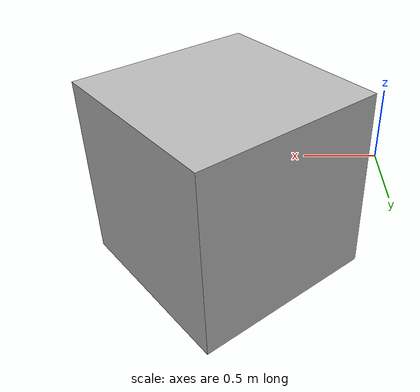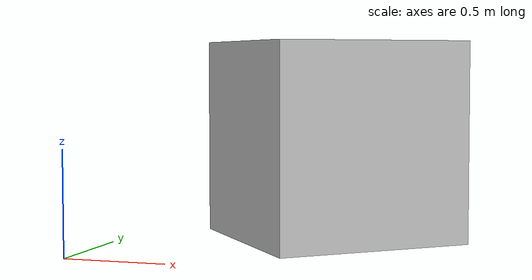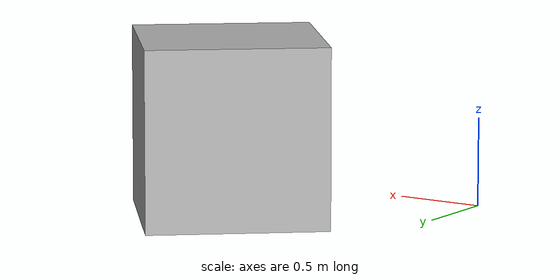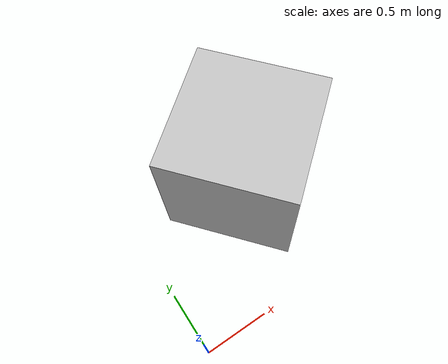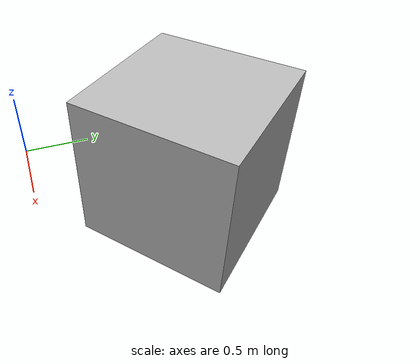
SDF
<?xml version="1.0" ?>
<sdf version="1.7">

  <!-- Box -->
  <model name="box">
    <pose>1 1 0.5 0 0 0.7</pose>
    <link name="box_root">
      <pose>0 0 0 0 0 0</pose>
      <collision name="box_collison">
	<geometry>
          <box>
            <size>1.0 1.0 1.0</size>
          </box>
	</geometry>
      </collision>
      <visual name="box_visual">
	<geometry>
          <box>
            <size>1.0 1.0 1.0</size>
          </box>
	</geometry>
      </visual>
    </link>

    <!-- Gazebo Yarp Model Pose Publisher plugin -->
    <plugin name='pose publisher' filename='libgazebo_yarp_modelposepublisher.so'></plugin>

  </model>
</sdf>
